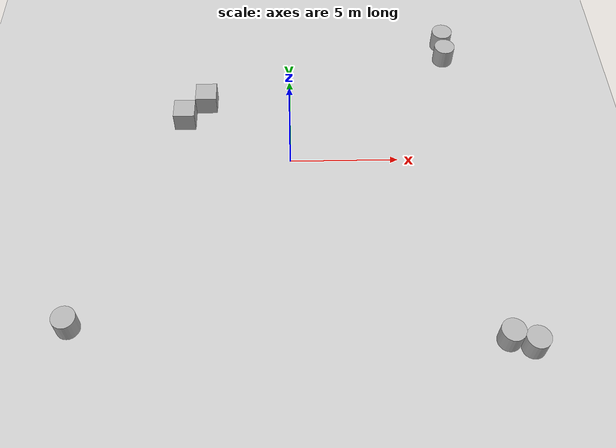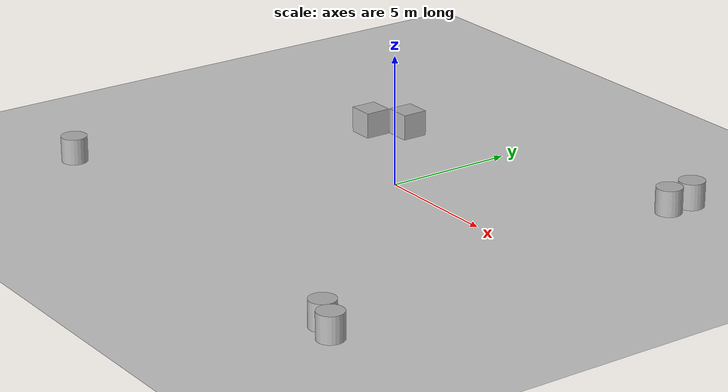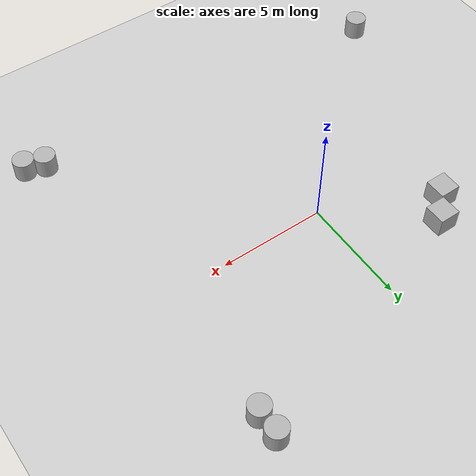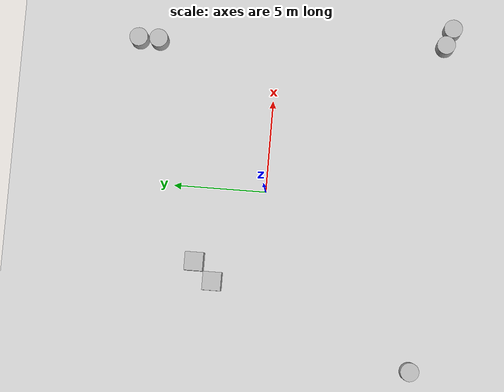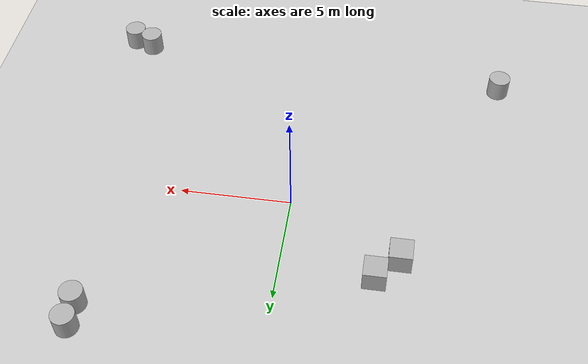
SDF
<sdf version='1.10'>
  <world name='training_world_3'>
    <physics name='1ms' type='ignored'>
      <max_step_size>0.001</max_step_size>
      <real_time_factor>1</real_time_factor>
      <real_time_update_rate>1000</real_time_update_rate>
    </physics>
    <plugin filename="gz-sim-physics-system" name="gz::sim::systems::Physics" />
    <plugin filename="gz-sim-user-commands-system" name="gz::sim::systems::UserCommands" />
    <plugin filename="gz-sim-scene-broadcaster-system" name="gz::sim::systems::SceneBroadcaster" />
    <plugin filename="gz-sim-physics-system" name="gz::sim::systems::Physics" />
    <plugin filename="gz-sim-user-commands-system" name="gz::sim::systems::UserCommands" />
    <plugin filename="gz-sim-scene-broadcaster-system" name="gz::sim::systems::SceneBroadcaster" />
    <plugin filename="gz-sim-sensors-system" name="gz::sim::systems::Sensors">
      <render_engine>ogre2</render_engine>
    </plugin>
    <gravity>0 0 -9.8000000000000007</gravity>
    <magnetic_field>5.5644999999999998e-06 2.2875799999999999e-05 -4.2388400000000002e-05</magnetic_field>
    <atmosphere type='adiabatic'/>
    <scene>
      <ambient>0.400000006 0.400000006 0.400000006 1</ambient>
      <background>0.699999988 0.699999988 0.699999988 1</background>
      <shadows>true</shadows>
    </scene>
    <model name='ground_plane'>
      <static>true</static>
      <link name='link'>
        <collision name='collision'>
          <geometry>
            <plane>
              <normal>0 0 1</normal>
              <size>100 100</size>
            </plane>
          </geometry>
          <surface>
            <friction>
              <ode/>
            </friction>
            <bounce/>
            <contact/>
          </surface>
        </collision>
        <visual name='visual'>
          <geometry>
            <plane>
              <normal>0 0 1</normal>
              <size>100 100</size>
            </plane>
          </geometry>
          <material>
            <ambient>0.800000012 0.800000012 0.800000012 1</ambient>
            <diffuse>0.800000012 0.800000012 0.800000012 1</diffuse>
            <specular>0.800000012 0.800000012 0.800000012 1</specular>
          </material>
        </visual>
        <pose>0 0 0 0 0 0</pose>
        <inertial>
          <pose>0 0 0 0 0 0</pose>
          <mass>1</mass>
          <inertia>
            <ixx>1</ixx>
            <ixy>0</ixy>
            <ixz>0</ixz>
            <iyy>1</iyy>
            <iyz>0</iyz>
            <izz>1</izz>
          </inertia>
        </inertial>
        <enable_wind>false</enable_wind>
      </link>
      <pose>0 0 0 0 0 0</pose>
      <self_collide>false</self_collide>
    </model>
    <model name='cylinder'>
      <pose>7.8637164197434259 7.52609041775405 0.5 0 0 0</pose>
      <link name='cylinder_link'>
        <inertial>
          <inertia>
            <ixx>0.14580000000000001</ixx>
            <ixy>0</ixy>
            <ixz>0</ixz>
            <iyy>0.14580000000000001</iyy>
            <iyz>0</iyz>
            <izz>0.125</izz>
          </inertia>
          <mass>1</mass>
          <pose>0 0 0 0 0 0</pose>
        </inertial>
        <collision name='cylinder_collision'>
          <geometry>
            <cylinder>
              <radius>0.5</radius>
              <length>1</length>
            </cylinder>
          </geometry>
          <surface>
            <friction>
              <ode/>
            </friction>
            <bounce/>
            <contact/>
          </surface>
        </collision>
        <visual name='cylinder_visual'>
          <geometry>
            <cylinder>
              <radius>0.5</radius>
              <length>1</length>
            </cylinder>
          </geometry>
          <material>
            <ambient>0.300000012 0.300000012 0.300000012 1</ambient>
            <diffuse>0.699999988 0.699999988 0.699999988 1</diffuse>
            <specular>1 1 1 1</specular>
          </material>
        </visual>
        <pose>0 0 0 0 0 0</pose>
        <enable_wind>false</enable_wind>
      </link>
      <static>false</static>
      <self_collide>false</self_collide>
    </model>
    <model name='cylinder_0'>
      <pose>7.8728013078188557 6.4450700325995802 0.5 0 0 0</pose>
      <link name='cylinder_link'>
        <inertial>
          <inertia>
            <ixx>0.14580000000000001</ixx>
            <ixy>0</ixy>
            <ixz>0</ixz>
            <iyy>0.14580000000000001</iyy>
            <iyz>0</iyz>
            <izz>0.125</izz>
          </inertia>
          <mass>1</mass>
          <pose>0 0 0 0 0 0</pose>
        </inertial>
        <collision name='cylinder_collision'>
          <geometry>
            <cylinder>
              <radius>0.5</radius>
              <length>1</length>
            </cylinder>
          </geometry>
          <surface>
            <friction>
              <ode/>
            </friction>
            <bounce/>
            <contact/>
          </surface>
        </collision>
        <visual name='cylinder_visual'>
          <geometry>
            <cylinder>
              <radius>0.5</radius>
              <length>1</length>
            </cylinder>
          </geometry>
          <material>
            <ambient>0.300000012 0.300000012 0.300000012 1</ambient>
            <diffuse>0.699999988 0.699999988 0.699999988 1</diffuse>
            <specular>1 1 1 1</specular>
          </material>
        </visual>
        <pose>0 0 0 0 0 0</pose>
        <enable_wind>false</enable_wind>
      </link>
      <static>false</static>
      <self_collide>false</self_collide>
    </model>
    <model name='cylinder_1'>
      <pose>-9.0398104493498916 -8.3704998635342616 0.5 0 0 0</pose>
      <link name='cylinder_link'>
        <inertial>
          <inertia>
            <ixx>0.14580000000000001</ixx>
            <ixy>0</ixy>
            <ixz>0</ixz>
            <iyy>0.14580000000000001</iyy>
            <iyz>0</iyz>
            <izz>0.125</izz>
          </inertia>
          <mass>1</mass>
          <pose>0 0 0 0 0 0</pose>
        </inertial>
        <collision name='cylinder_collision'>
          <geometry>
            <cylinder>
              <radius>0.5</radius>
              <length>1</length>
            </cylinder>
          </geometry>
          <surface>
            <friction>
              <ode/>
            </friction>
            <bounce/>
            <contact/>
          </surface>
        </collision>
        <visual name='cylinder_visual'>
          <geometry>
            <cylinder>
              <radius>0.5</radius>
              <length>1</length>
            </cylinder>
          </geometry>
          <material>
            <ambient>0.300000012 0.300000012 0.300000012 1</ambient>
            <diffuse>0.699999988 0.699999988 0.699999988 1</diffuse>
            <specular>1 1 1 1</specular>
          </material>
        </visual>
        <pose>0 0 0 0 0 0</pose>
        <enable_wind>false</enable_wind>
      </link>
      <static>false</static>
      <self_collide>false</self_collide>
    </model>
    <model name='box'>
      <pose>-4.0445248464775982 3.5377031736163627 0.5 0 0 0</pose>
      <link name='box_link'>
        <inertial>
          <inertia>
            <ixx>0.16666</ixx>
            <ixy>0</ixy>
            <ixz>0</ixz>
            <iyy>0.16666</iyy>
            <iyz>0</iyz>
            <izz>0.16666</izz>
          </inertia>
          <mass>1</mass>
          <pose>0 0 0 0 0 0</pose>
        </inertial>
        <collision name='box_collision'>
          <geometry>
            <box>
              <size>1 1 1</size>
            </box>
          </geometry>
          <surface>
            <friction>
              <ode/>
            </friction>
            <bounce/>
            <contact/>
          </surface>
        </collision>
        <visual name='box_visual'>
          <geometry>
            <box>
              <size>1 1 1</size>
            </box>
          </geometry>
          <material>
            <ambient>0.300000012 0.300000012 0.300000012 1</ambient>
            <diffuse>0.699999988 0.699999988 0.699999988 1</diffuse>
            <specular>1 1 1 1</specular>
          </material>
        </visual>
        <pose>0 0 0 0 0 0</pose>
        <enable_wind>false</enable_wind>
      </link>
      <static>false</static>
      <self_collide>false</self_collide>
    </model>
    <model name='box_0'>
      <pose>-5.0301550416822511 2.4966202772658819 0.5 0 0 0</pose>
      <link name='box_link'>
        <inertial>
          <inertia>
            <ixx>0.16666</ixx>
            <ixy>0</ixy>
            <ixz>0</ixz>
            <iyy>0.16666</iyy>
            <iyz>0</iyz>
            <izz>0.16666</izz>
          </inertia>
          <mass>1</mass>
          <pose>0 0 0 0 0 0</pose>
        </inertial>
        <collision name='box_collision'>
          <geometry>
            <box>
              <size>1 1 1</size>
            </box>
          </geometry>
          <surface>
            <friction>
              <ode/>
            </friction>
            <bounce/>
            <contact/>
          </surface>
        </collision>
        <visual name='box_visual'>
          <geometry>
            <box>
              <size>1 1 1</size>
            </box>
          </geometry>
          <material>
            <ambient>0.300000012 0.300000012 0.300000012 1</ambient>
            <diffuse>0.699999988 0.699999988 0.699999988 1</diffuse>
            <specular>1 1 1 1</specular>
          </material>
        </visual>
        <pose>0 0 0 0 0 0</pose>
        <enable_wind>false</enable_wind>
      </link>
      <static>false</static>
      <self_collide>false</self_collide>
    </model>
    <model name='cylinder_2'>
      <pose>9.589629690166209 -9.4764189892186472 0.5 0 0 0</pose>
      <link name='cylinder_link'>
        <inertial>
          <inertia>
            <ixx>0.14580000000000001</ixx>
            <ixy>0</ixy>
            <ixz>0</ixz>
            <iyy>0.14580000000000001</iyy>
            <iyz>0</iyz>
            <izz>0.125</izz>
          </inertia>
          <mass>1</mass>
          <pose>0 0 0 0 0 0</pose>
        </inertial>
        <collision name='cylinder_collision'>
          <geometry>
            <cylinder>
              <radius>0.5</radius>
              <length>1</length>
            </cylinder>
          </geometry>
          <surface>
            <friction>
              <ode/>
            </friction>
            <bounce/>
            <contact/>
          </surface>
        </collision>
        <visual name='cylinder_visual'>
          <geometry>
            <cylinder>
              <radius>0.5</radius>
              <length>1</length>
            </cylinder>
          </geometry>
          <material>
            <ambient>0.300000012 0.300000012 0.300000012 1</ambient>
            <diffuse>0.699999988 0.699999988 0.699999988 1</diffuse>
            <specular>1 1 1 1</specular>
          </material>
        </visual>
        <pose>0 0 0 0 0 0</pose>
        <enable_wind>false</enable_wind>
      </link>
      <static>false</static>
      <self_collide>false</self_collide>
    </model>
    <model name='cylinder_3'>
      <pose>8.6675064158402204 -9.1555623189042414 0.5 0 0 0</pose>
      <link name='cylinder_link'>
        <inertial>
          <inertia>
            <ixx>0.14580000000000001</ixx>
            <ixy>0</ixy>
            <ixz>0</ixz>
            <iyy>0.14580000000000001</iyy>
            <iyz>0</iyz>
            <izz>0.125</izz>
          </inertia>
          <mass>1</mass>
          <pose>0 0 0 0 0 0</pose>
        </inertial>
        <collision name='cylinder_collision'>
          <geometry>
            <cylinder>
              <radius>0.5</radius>
              <length>1</length>
            </cylinder>
          </geometry>
          <surface>
            <friction>
              <ode/>
            </friction>
            <bounce/>
            <contact/>
          </surface>
        </collision>
        <visual name='cylinder_visual'>
          <geometry>
            <cylinder>
              <radius>0.5</radius>
              <length>1</length>
            </cylinder>
          </geometry>
          <material>
            <ambient>0.300000012 0.300000012 0.300000012 1</ambient>
            <diffuse>0.699999988 0.699999988 0.699999988 1</diffuse>
            <specular>1 1 1 1</specular>
          </material>
        </visual>
        <pose>0 0 0 0 0 0</pose>
        <enable_wind>false</enable_wind>
      </link>
      <static>false</static>
      <self_collide>false</self_collide>
    </model>
    <light name='sun' type='directional'>
      <pose>0 0 10 0 0 0</pose>
      <cast_shadows>true</cast_shadows>
      <intensity>1</intensity>
      <direction>-0.5 0.10000000000000001 -0.90000000000000002</direction>
      <diffuse>0.800000012 0.800000012 0.800000012 1</diffuse>
      <specular>0.200000003 0.200000003 0.200000003 1</specular>
      <attenuation>
        <range>1000</range>
        <linear>0.01</linear>
        <constant>0.90000000000000002</constant>
        <quadratic>0.001</quadratic>
      </attenuation>
      <spot>
        <inner_angle>0</inner_angle>
        <outer_angle>0</outer_angle>
        <falloff>0</falloff>
      </spot>
    </light>
  </world>
</sdf>
